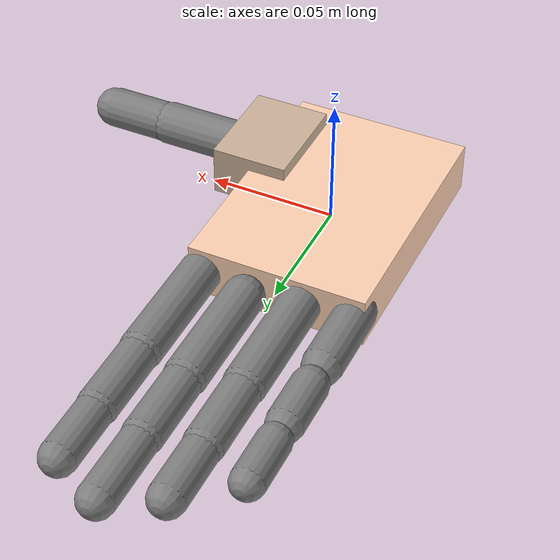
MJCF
<mujoco model="simple_human_hand">
  <compiler angle="radian" autolimits="true" coordinate="local"/>
  <option gravity="0 0 -9.81"/>

  <default>
    <joint limited="true" damping="0.1"/>
    <geom type="capsule" density="500" friction="1 0.1 0.1"/>
  </default>

  <worldbody>
    <!-- 手掌：一个 box，中心在原点 -->
    <body name="palm" pos="0 0 0">
      <geom name="palm_geom" type="box" size="0.035 0.05 0.01" rgba="1.0 0.82 0.70 1" contype="0" conaffinity="0"/>

      <!-- ========= 四根手指：index, middle, ring, little ========= -->
      <!-- 指根在手掌前缘 y=0.05 上，沿 x 分布 -->

      <!-- = 食指 index finger = -->
      <body name="index_base" pos="0.03 0.05 0">
        <!-- 近节关节：绕 x 轴弯曲，0~90度 -->
        <joint name="index_j1" type="hinge" axis="1 0 0" range="0 1.57"/>
        <!-- 近节几何：从 (0,0,0) 指向 +y -->
        <geom name="index_ph1" fromto="0 0 0  0 0.045 0" size="0.008"/>

        <body name="index_mid" pos="0 0.045 0">
          <joint name="index_j2" type="hinge" axis="1 0 0" range="0 1.57"/>
          <geom name="index_ph2" fromto="0 0 0  0 0.03 0" size="0.0075"/>

          <body name="index_tip" pos="0 0.03 0">
            <joint name="index_j3" type="hinge" axis="1 0 0" range="0 1.57"/>
            <geom name="index_ph3" fromto="0 0 0  0 0.025 0" size="0.007"/>
          </body>
        </body>
      </body>

      <!-- = 中指 middle finger = -->
      <body name="middle_base" pos="0.01 0.055 0">
        <joint name="middle_j1" type="hinge" axis="1 0 0" range="0 1.57"/>
        <geom name="middle_ph1" fromto="0 0 0  0 0.045 0" size="0.008"/>

        <body name="middle_mid" pos="0 0.045 0">
          <joint name="middle_j2" type="hinge" axis="1 0 0" range="0 1.57"/>
          <geom name="middle_ph2" fromto="0 0 0  0 0.03 0" size="0.0075"/>

          <body name="middle_tip" pos="0 0.03 0">
            <joint name="middle_j3" type="hinge" axis="1 0 0" range="0 1.57"/>
            <geom name="middle_ph3" fromto="0 0 0  0 0.03 0" size="0.007"/>
          </body>
        </body>
      </body>

      <!-- = 无名指 ring finger = -->
      <body name="ring_base" pos="-0.01 0.05 0">
        <joint name="ring_j1" type="hinge" axis="1 0 0" range="0 1.57"/>
        <geom name="ring_ph1" fromto="0 0 0  0 0.045 0" size="0.008"/>

        <body name="ring_mid" pos="0 0.045 0">
          <joint name="ring_j2" type="hinge" axis="1 0 0" range="0 1.57"/>
          <geom name="ring_ph2" fromto="0 0 0  0 0.03 0" size="0.0075"/>

          <body name="ring_tip" pos="0 0.03 0">
            <joint name="ring_j3" type="hinge" axis="1 0 0" range="0 1.57"/>
            <geom name="ring_ph3" fromto="0 0 0  0 0.025 0" size="0.007"/>
          </body>
        </body>
      </body>

      <!-- = 小指 little finger = -->
      <body name="little_base" pos="-0.03 0.045 0">
        <joint name="little_j1" type="hinge" axis="1 0 0" range="0 1.57"/>
        <geom name="little_ph1" fromto="0 0 0  0 0.03 0" size="0.0075"/>

        <body name="little_mid" pos="0 0.04 0">
          <joint name="little_j2" type="hinge" axis="1 0 0" range="0 1.57"/>
          <geom name="little_ph2" fromto="0 0 0  0 0.02 0" size="0.007"/>

          <body name="little_tip" pos="0 0.028 0">
            <joint name="little_j3" type="hinge" axis="1 0 0" range="0 1.57"/>
            <geom name="little_ph3" fromto="0 0 0  0 0.02 0" size="0.0065"/>
          </body>
        </body>
      </body>

      <!-- ========= 大拇指 thumb（主动双自由度） ========= -->

      <!-- 拇指根位置（基于你原来 pos） -->
      <body name="thumb_root" pos="0.035 -0.02 0.005">

        <inertial pos="0 0 0" mass="0.005" diaginertia="1e-5 1e-5 1e-5"/>

        <!-- DOF 1：拇指根（绕 y 轴） -->
        <joint name="thumb_flex" type="hinge" axis="0 -1 0" range="0 2"/>

        <!-- 再套一层，用第二个 hinge 控制弯曲 -->
        <body name="thumb_base" pos="0 0 0">

          <!-- DOF 2：拇指（绕 z 轴） -->
          <joint name="thumb_abd" type="hinge" axis="0 0 1" range="0 1.57"/>

          <!-- 第一节（原来的 thumb_ph1） -->
          <geom name="thumb_root_geom" type="box" size="0.015 0.02 0.01" rgba="0.8 0.7 0.6 1"/>
          <!-- 第二节 -->
          <body name="thumb_mid" pos="0.015 0 0">
            <!-- 弯曲 DIP（保持 1 DoF） -->
            <joint name="thumb_tip_flex" type="hinge" axis="0 -1 0" range="0 1.57"/>
            <geom name="thumb_ph2" fromto="0 0 0  0.03 0 0" size="0.0085"/>

            <!-- 第三节（可选，如你原始结构有） -->
            <body name="thumb_tip" pos="0.03 0 0">
              <joint name="thumb_tip2_flex" type="hinge" axis="0 -1 0" range="0 1.57"/>
              <geom name="thumb_ph3" fromto="0 0 0  0.025 0 0" size="0.008"/>
            </body>
          </body>

        </body>
      </body>

    </body>
  </worldbody>

  <!-- ========= 每个关节一个 position actuator ========= -->
  <actuator>
    <!-- index -->
    <position name="act_index_j1" joint="index_j1" kp="50" ctrlrange="0 1.57"/>
    <position name="act_index_j2" joint="index_j2" kp="50" ctrlrange="0 1.57"/>
    <position name="act_index_j3" joint="index_j3" kp="50" ctrlrange="0 1.57"/>

    <!-- middle -->
    <position name="act_middle_j1" joint="middle_j1" kp="50" ctrlrange="0 1.57"/>
    <position name="act_middle_j2" joint="middle_j2" kp="50" ctrlrange="0 1.57"/>
    <position name="act_middle_j3" joint="middle_j3" kp="50" ctrlrange="0 1.57"/>

    <!-- ring -->
    <position name="act_ring_j1" joint="ring_j1" kp="50" ctrlrange="0 1.57"/>
    <position name="act_ring_j2" joint="ring_j2" kp="50" ctrlrange="0 1.57"/>
    <position name="act_ring_j3" joint="ring_j3" kp="50" ctrlrange="0 1.57"/>

    <!-- little -->
    <position name="act_little_j1" joint="little_j1" kp="50" ctrlrange="0 1.57"/>
    <position name="act_little_j2" joint="little_j2" kp="50" ctrlrange="0 1.57"/>
    <position name="act_little_j3" joint="little_j3" kp="50" ctrlrange="0 1.57"/>

    <!-- thumb actuators：两个主动自由度 -->
    <position name="act_thumb_abd" joint="thumb_abd"  kp="50" ctrlrange="0 1.57"/>
    <position name="act_thumb_flex" joint="thumb_flex" kp="50" ctrlrange="0 2"/>

    <!-- 拇指 distal joints -->
    <position name="act_thumb_tip_flex"  joint="thumb_tip_flex"  kp="50" ctrlrange="0 1.57"/>
    <position name="act_thumb_tip2_flex" joint="thumb_tip2_flex" kp="50" ctrlrange="0 1.57"/>

  </actuator>
</mujoco>
